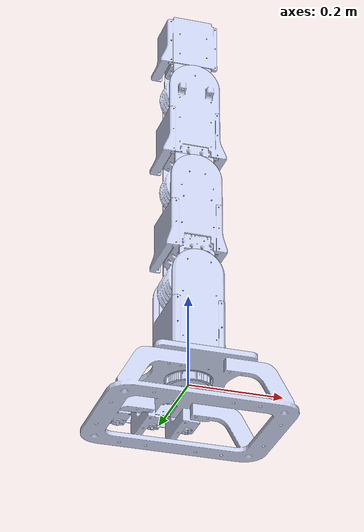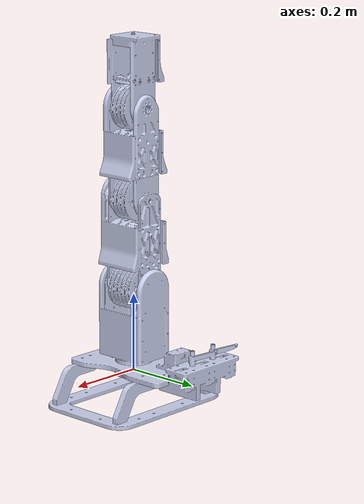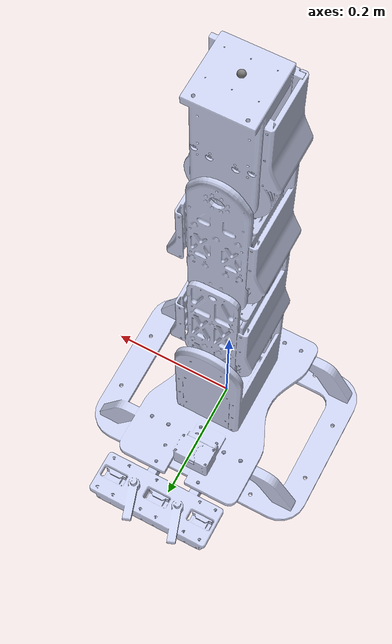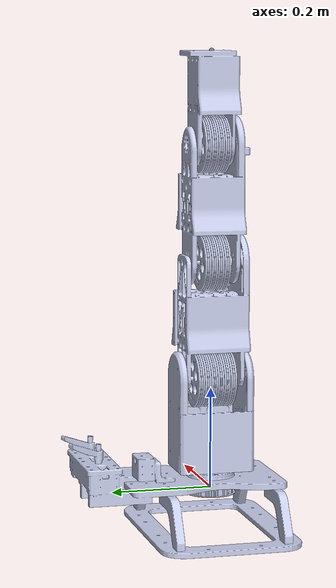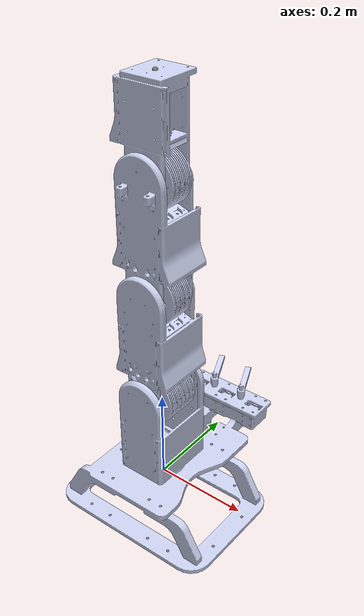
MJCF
<mujoco model="pmi_arm_only_no_collision">
  <!-- Based on pmi_arm_only_torque_debug.xml — mesh geoms do not collide (visual only). -->
  <compiler angle="radian" meshdir="../../ros_ws/pmi_description3/meshes/"/>

  <asset>
    <mesh name="base_link" content_type="model/stl" file="base_link.STL"/>
    <mesh name="link1" content_type="model/stl" file="link1.STL"/>
    <mesh name="link2" content_type="model/stl" file="link2.STL"/>
    <mesh name="link3" content_type="model/stl" file="link3.STL"/>
    <mesh name="link4" content_type="model/stl" file="link4.STL"/>
  </asset>

  <worldbody>
    <geom type="mesh" rgba="0.792157 0.819608 0.933333 1" mesh="base_link" contype="0" conaffinity="0"/>
    <body name="link1" quat="-3.67321e-06 1 0 0">
      <inertial pos="0.0029766 -1.9976e-09 -0.10913" quat="0.706042 -1.47613e-05 -1.4717e-05 0.70817" mass="1.1285" diaginertia="0.0034685 0.0034546 0.0014719"/>
      <joint name="jnt1" pos="0 0 0" axis="0 0 1" range="-3.1416 3.1416" damping="0.2" armature="0.01"/>
      <geom type="mesh" rgba="0.79216 0.81961 0.93333 1" mesh="link1" contype="0" conaffinity="0"/>
      <body name="link2" pos="0 0 -0.22" quat="0.707105 0.707108 0 0">
        <inertial pos="5.8908e-05 -0.083968 -0.0062912" quat="0.498097 0.498829 -0.501893 0.501171" mass="1.2748" diaginertia="0.00297121 0.00272469 0.0013258"/>
        <joint name="jnt2" pos="0 0 0" axis="0 0 1" range="-1.5709 1.5709" damping="0.2" armature="0.01"/>
        <geom type="mesh" rgba="0.79216 0.81961 0.93333 1" mesh="link2" contype="0" conaffinity="0"/>
        <body name="link3" pos="0 -0.23 0" quat="0.70707 0 0 -0.707143">
          <inertial pos="0.095221 -3.7333e-05 -0.004723" quat="-3.49047e-05 0.707746 -4.11681e-05 0.706467" mass="1.2621" diaginertia="0.00422721 0.0037848 0.00109379"/>
          <joint name="jnt3" pos="0 0 0" axis="0 0 1" range="-1.5709 1.5709" damping="0.1" armature="0.005"/>
          <geom type="mesh" rgba="0.79216 0.81961 0.93333 1" mesh="link3" contype="0" conaffinity="0"/>
          <body name="link4" pos="0.23 0 0" quat="-3.67321e-06 -1 0 0">
            <inertial pos="0.068913 0.0046115 0.0014599" quat="0.00349018 0.708241 -0.00339979 0.705954" mass="0.85956" diaginertia="0.00180901 0.00135756 0.000725829"/>
            <joint name="jnt4" pos="0 0 0" axis="0 0 1" range="-1.5709 1.5709" damping="0.05" armature="0.003"/>
            <geom type="mesh" rgba="0.79216 0.81961 0.93333 1" mesh="link4" contype="0" conaffinity="0"/>
            <site name="end_effector" pos="0.18 0 0" quat="0.70707 0 0 -0.707143"/>
          </body>
        </body>
      </body>
    </body>
  </worldbody>

  <sensor>
    <jointpos joint="jnt1" name="sens_jnt1"/>
    <jointpos joint="jnt2" name="sens_jnt2"/>
    <jointpos joint="jnt3" name="sens_jnt3"/>
    <jointpos joint="jnt4" name="sens_jnt4"/>
    <framepos objtype="site" objname="end_effector" name="ee_pos"/>
  </sensor>
</mujoco>
